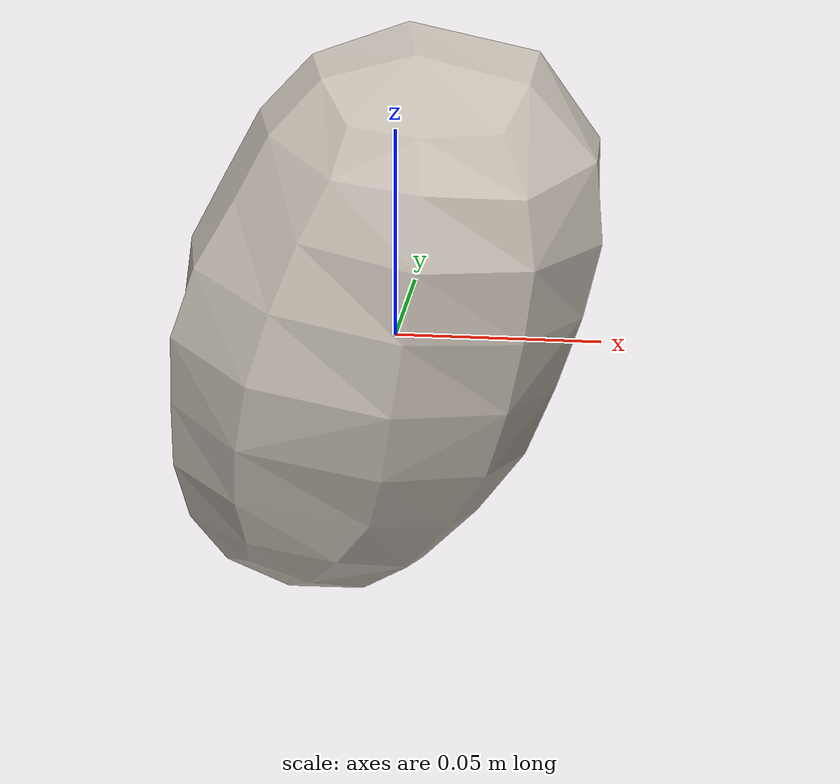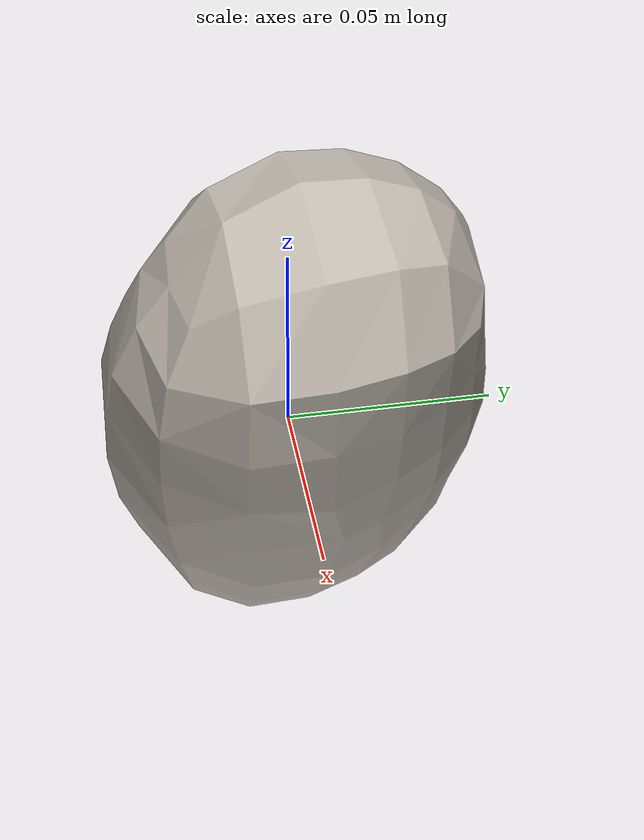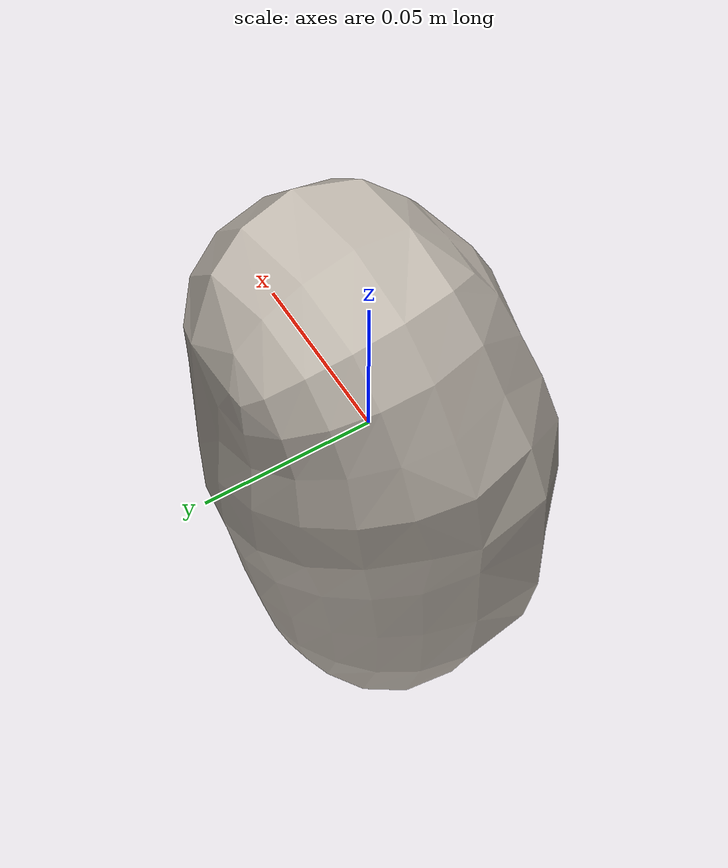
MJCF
<mujoco model="Potato_16">
  <compiler autolimits="true" boundmass="0.01" angle="radian"/>
  <default>
    <default class="/">
      <default class="__VISUAL_MJT__">
        <geom contype="0" conaffinity="0" group="0"/>
      </default>
      <default class="__STRUCTURAL_MJT__">
        <geom contype="8" conaffinity="15" group="4" friction="0.90000000000000002 0.90000000000000002 0.001" solref="0.025000000000000001 1" solimp="0.998 0.998 0.001"/>
      </default>
      <default class="__DYNAMIC_MJT__">
        <geom contype="1" conaffinity="15" group="4" friction="0.90000000000000002 0.90000000000000002 0.001" solref="0.025000000000000001 1" solimp="0.998 0.998 0.001"/>
      </default>
    </default>
  </default>
  <asset>
    <texture name="Potato2_Mat1" type="2d" file="Potato2_AlbedoTransparency.png"/>
    <material name="material_Potato2_Mat1" class="/" texture="Potato2_Mat1" specular="0.5" shininess="0.5" rgba="1 1 1 1"/>
    <mesh name="Potato_16_potato_b6" class="/" file="Potato_16_potato_b6/Potato_16_potato_b6.obj" scale="1 1 1"/>
  </asset>
  <worldbody>
    <body name="Potato_16">
      <joint name="Potato_16_free" class="/" type="free" pos="0 0 0" axis="0 0 1" stiffness="0" range="0 0" armature="0" damping="0.10000000000000001" frictionloss="0"/>
      <body name="Potato_16_potato_b6" pos="-0.0030362396240234376 -0.0028600000000000001 -2.4360961914062526e-05" quat="0.99734443426132202 0 0.072829157114028931 0">
        <geom name="Potato_16_potato_b6" class="__VISUAL_MJT__" type="mesh" material="material_Potato2_Mat1" shellinertia="true" mesh="Potato_16_potato_b6"/>
        <geom name="Potato_16_PrimitiveCollider_0" class="__DYNAMIC_MJT__" type="capsule" size="0.046470671892166138 0.030182316899299622" rgba="0 1 0 1" pos="-0.0030013313516974449 0.0028634080663323402 0.00032374914735555649" quat="1.4751396609986736e-06 0.99999999999891198 0 0"/>
      </body>
    </body>
  </worldbody>
</mujoco>
